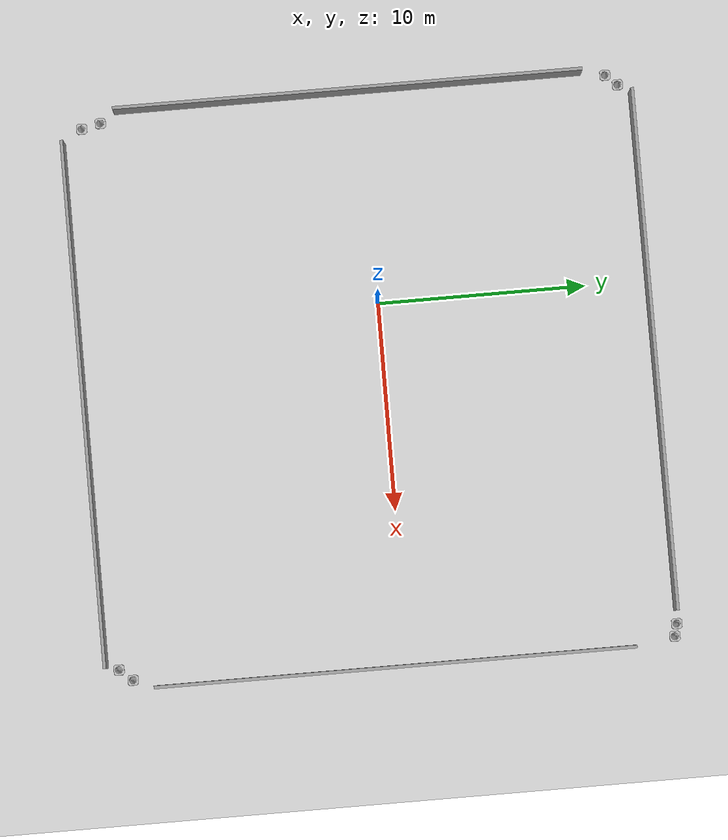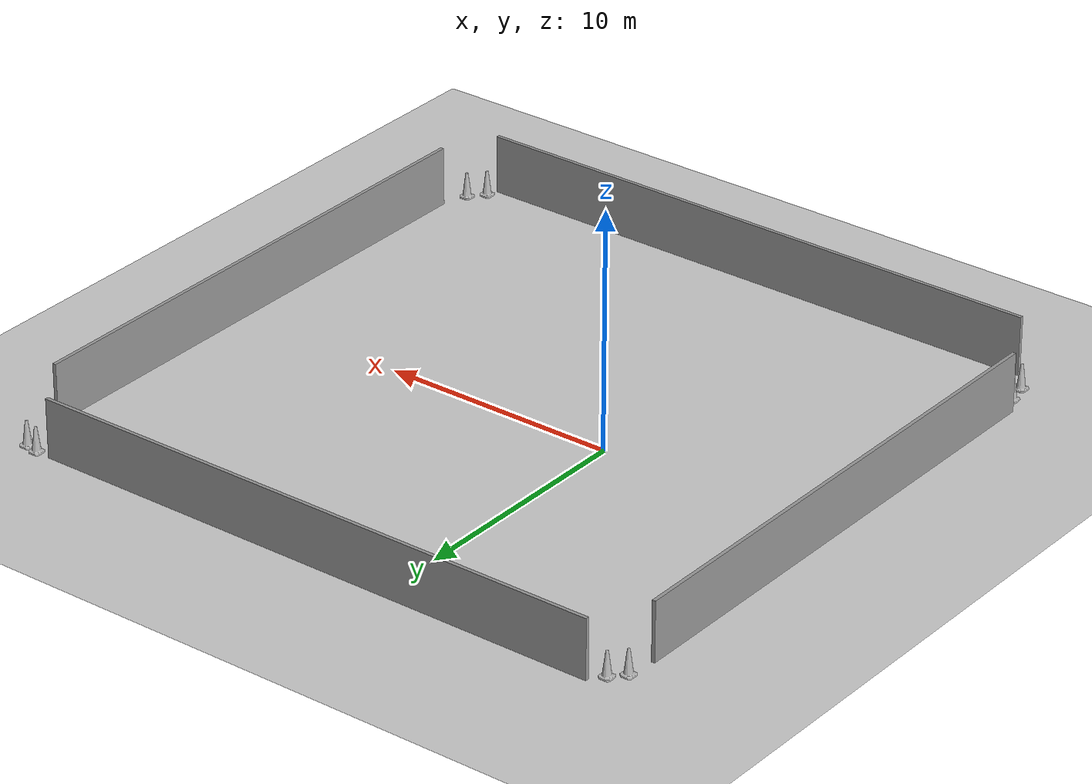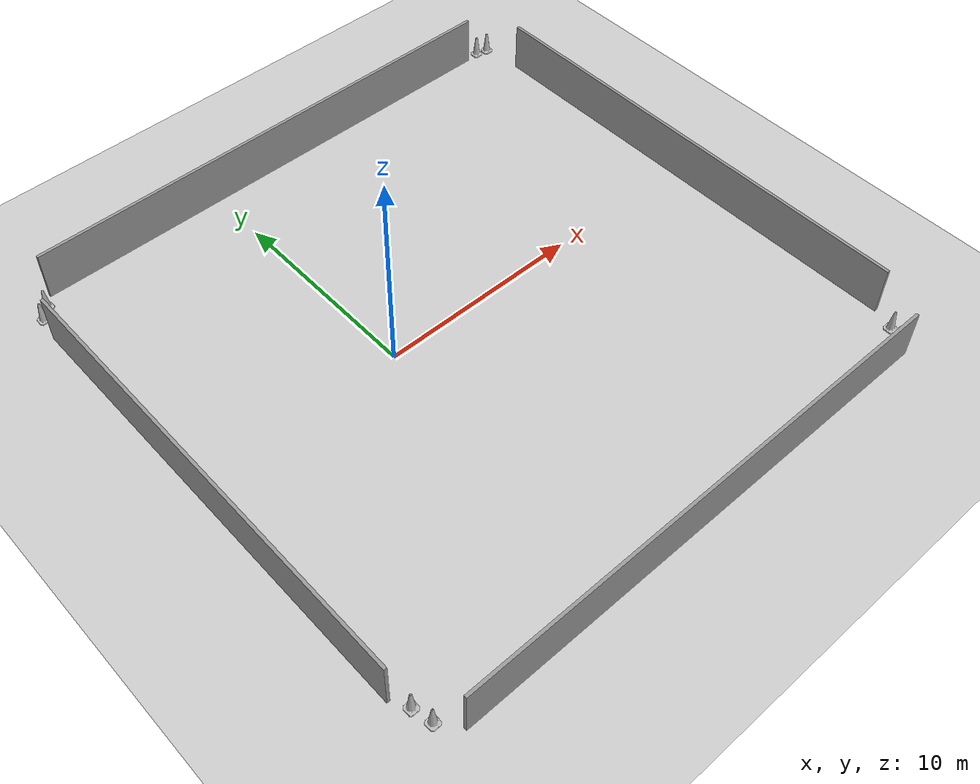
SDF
<sdf version="1.7">
 <world name="default">
  <light name="sun" type="directional">
   <pose>0 0 10 0 -0 0</pose>
   <diffuse>0.8 0.8 0.8 1</diffuse>
   <specular>0.2 0.2 0.2 1</specular>
   <attenuation>
    <range>1000</range>
    <constant>0.9</constant>
    <linear>0.01</linear>
    <quadratic>0.001</quadratic>
   </attenuation>
   <direction>-0.5 0.1 -0.9</direction>
   <spot><inner_angle>0</inner_angle><outer_angle>0</outer_angle><falloff>0</falloff></spot>
  </light>
  <model name="ground_plane">
   <static>1</static>
   <link name="link">
    <collision name="collision">
     <geometry><plane><normal>0 0 1</normal><size>100 100</size></plane></geometry>
     <surface><friction><ode><mu>100</mu><mu2>50</mu2></ode></friction></surface>
    </collision>
    <visual name="visual">
     <cast_shadows>0</cast_shadows>
     <geometry><plane><normal>0 0 1</normal><size>100 100</size></plane></geometry>
     <material>
      <script><uri>file://media/materials/scripts/gazebo.material</uri><name>Gazebo/Grey</name></script>
     </material>
    </visual>
   </link>
  </model>
  <gravity>0 0 -9.8</gravity>
  <magnetic_field>6e-06 2.3e-05 -4.2e-05</magnetic_field>
  <atmosphere type="adiabatic"/>
  <physics type="ode">
   <max_step_size>0.001</max_step_size>
   <real_time_factor>1</real_time_factor>
   <real_time_update_rate>1000</real_time_update_rate>
  </physics>
  <scene><ambient>0.4 0.4 0.4 1</ambient><background>0.7 0.7 0.7 1</background><shadows>1</shadows></scene>
  <audio><device>default</device></audio>
  <spherical_coordinates>
   <surface_model>EARTH_WGS84</surface_model>
   <latitude_deg>0</latitude_deg>
   <longitude_deg>0</longitude_deg>
   <elevation>0</elevation>
   <heading_deg>0</heading_deg>
  </spherical_coordinates>
  <model name="world_0">
   <pose>3.60702 -0.720893 0 0 -0 0</pose>
   <link name="Wall_25">
    <collision name="Wall_25_Collision">
     <geometry><box><size>22.5 0.15 2.5</size></box></geometry>
     <pose>0 0 1.25 0 -0 0</pose>
    </collision>
    <visual name="Wall_25_Visual">
     <pose>0 0 1.25 0 -0 0</pose>
     <geometry><box><size>22.5 0.15 2.5</size></box></geometry>
     <material>
      <script><uri>file://media/materials/scripts/gazebo.material</uri><name>Gazebo/Grey</name></script>
      <ambient>1 1 1 1</ambient>
     </material>
     <meta><layer>0</layer></meta>
    </visual>
    <pose>-13.8282 0.124328 0 0 -0 -1.5708</pose>
   </link>
   <link name="Wall_28">
    <collision name="Wall_28_Collision">
     <geometry><box><size>25 0.15 2.5</size></box></geometry>
     <pose>0 0 1.25 0 -0 0</pose>
    </collision>
    <visual name="Wall_28_Visual">
     <pose>0 0 1.25 0 -0 0</pose>
     <geometry><box><size>25 0.15 2.5</size></box></geometry>
     <material>
      <script><uri>file://media/materials/scripts/gazebo.material</uri><name>Gazebo/Grey</name></script>
      <ambient>1 1 1 1</ambient>
     </material>
     <meta><layer>0</layer></meta>
    </visual>
    <pose>-0.219485 13.6668 0 0 -0 0</pose>
   </link>
   <link name="Wall_30">
    <collision name="Wall_30_Collision">
     <geometry><box><size>23 0.15 2.5</size></box></geometry>
     <pose>0 0 1.25 0 -0 0</pose>
    </collision>
    <visual name="Wall_30_Visual">
     <pose>0 0 1.25 0 -0 0</pose>
     <geometry><box><size>23 0.15 2.5</size></box></geometry>
     <material>
      <script><uri>file://media/materials/scripts/gazebo.material</uri><name>Gazebo/Grey</name></script>
      <ambient>1 1 1 1</ambient>
     </material>
     <meta><layer>0</layer></meta>
    </visual>
    <pose>13.8282 0.089553 0 0 -0 -1.5708</pose>
   </link>
   <link name="Wall_32">
    <collision name="Wall_32_Collision">
     <geometry><box><size>25.25 0.15 2.5</size></box></geometry>
     <pose>0 0 1.25 0 -0 0</pose>
    </collision>
    <visual name="Wall_32_Visual">
     <pose>0 0 1.25 0 -0 0</pose>
     <geometry><box><size>25.25 0.15 2.5</size></box></geometry>
     <material>
      <script><uri>file://media/materials/scripts/gazebo.material</uri><name>Gazebo/Grey</name></script>
      <ambient>1 1 1 1</ambient>
     </material>
     <meta><layer>0</layer></meta>
    </visual>
    <pose>0.12074 -13.6668 0 0 -0 0</pose>
   </link>
   <static>1</static>
  </model>
  <model name="Construction Cone">
   <link name="link">
    <collision name="collision">
     <geometry>
      <mesh><scale>10 10 10</scale><uri>model://construction_cone/meshes/construction_cone.dae</uri></mesh>
     </geometry>
    </collision>
    <visual name="visual">
     <geometry>
      <mesh><scale>10 10 10</scale><uri>model://construction_cone/meshes/construction_cone.dae</uri></mesh>
     </geometry>
    </visual>
    <inertial>
     <inertia><ixx>1</ixx><ixy>0</ixy><ixz>0</ixz><iyy>1</iyy><iyz>0</iyz><izz>1</izz></inertia>
     <mass>1</mass>
    </inertial>
   </link>
   <pose>-10.0555 11.8353 -0 0 -0 0</pose>
  </model>
  <model name="Construction Cone_0">
   <link name="link">
    <collision name="collision">
     <geometry>
      <mesh><scale>10 10 10</scale><uri>model://construction_cone/meshes/construction_cone.dae</uri></mesh>
     </geometry>
    </collision>
    <visual name="visual">
     <geometry>
      <mesh><scale>10 10 10</scale><uri>model://construction_cone/meshes/construction_cone.dae</uri></mesh>
     </geometry>
    </visual>
    <inertial>
     <inertia><ixx>1</ixx><ixy>0</ixy><ixz>0</ixz><iyy>1</iyy><iyz>0</iyz><izz>1</izz></inertia>
     <mass>1</mass>
    </inertial>
   </link>
   <pose>-9.54649 12.3904 -0 0 -1e-06 0</pose>
  </model>
  <model name="Construction Cone_1">
   <link name="link">
    <collision name="collision">
     <geometry>
      <mesh><scale>10 10 10</scale><uri>model://construction_cone/meshes/construction_cone.dae</uri></mesh>
     </geometry>
    </collision>
    <visual name="visual">
     <geometry>
      <mesh><scale>10 10 10</scale><uri>model://construction_cone/meshes/construction_cone.dae</uri></mesh>
     </geometry>
    </visual>
    <inertial>
     <inertia><ixx>1</ixx><ixy>0</ixy><ixz>0</ixz><iyy>1</iyy><iyz>0</iyz><izz>1</izz></inertia>
     <mass>1</mass>
    </inertial>
   </link>
   <pose>-9.58176 -13.4841 -3e-06 4e-06 1e-06 0</pose>
  </model>
  <model name="Construction Cone_2">
   <link name="link">
    <collision name="collision">
     <geometry>
      <mesh><scale>10 10 10</scale><uri>model://construction_cone/meshes/construction_cone.dae</uri></mesh>
     </geometry>
    </collision>
    <visual name="visual">
     <geometry>
      <mesh><scale>10 10 10</scale><uri>model://construction_cone/meshes/construction_cone.dae</uri></mesh>
     </geometry>
    </visual>
    <inertial>
     <inertia><ixx>1</ixx><ixy>0</ixy><ixz>0</ixz><iyy>1</iyy><iyz>0</iyz><izz>1</izz></inertia>
     <mass>1</mass>
    </inertial>
   </link>
   <pose>-9.78338 -12.5672 -0 0 -0 0</pose>
  </model>
  <model name="Construction Cone_3">
   <link name="link">
    <collision name="collision">
     <geometry>
      <mesh><scale>10 10 10</scale><uri>model://construction_cone/meshes/construction_cone.dae</uri></mesh>
     </geometry>
    </collision>
    <visual name="visual">
     <geometry>
      <mesh><scale>10 10 10</scale><uri>model://construction_cone/meshes/construction_cone.dae</uri></mesh>
     </geometry>
    </visual>
    <inertial>
     <inertia><ixx>1</ixx><ixy>0</ixy><ixz>0</ixz><iyy>1</iyy><iyz>0</iyz><izz>1</izz></inertia>
     <mass>1</mass>
    </inertial>
   </link>
   <pose>17.0161 -13.1919 -0 0 -0 0</pose>
  </model>
  <model name="Construction Cone_4">
   <link name="link">
    <collision name="collision">
     <geometry>
      <mesh><scale>10 10 10</scale><uri>model://construction_cone/meshes/construction_cone.dae</uri></mesh>
     </geometry>
    </collision>
    <visual name="visual">
     <geometry>
      <mesh><scale>10 10 10</scale><uri>model://construction_cone/meshes/construction_cone.dae</uri></mesh>
     </geometry>
    </visual>
    <inertial>
     <inertia><ixx>1</ixx><ixy>0</ixy><ixz>0</ixz><iyy>1</iyy><iyz>0</iyz><izz>1</izz></inertia>
     <mass>1</mass>
    </inertial>
   </link>
   <pose>16.4731 -13.8234 -0 -0 -0 -0</pose>
  </model>
  <model name="Construction Cone_5">
   <link name="link">
    <collision name="collision">
     <geometry>
      <mesh><scale>10 10 10</scale><uri>model://construction_cone/meshes/construction_cone.dae</uri></mesh>
     </geometry>
    </collision>
    <visual name="visual">
     <geometry>
      <mesh><scale>10 10 10</scale><uri>model://construction_cone/meshes/construction_cone.dae</uri></mesh>
     </geometry>
    </visual>
    <inertial>
     <inertia><ixx>1</ixx><ixy>0</ixy><ixz>0</ixz><iyy>1</iyy><iyz>0</iyz><izz>1</izz></inertia>
     <mass>1</mass>
    </inertial>
   </link>
   <pose>16.5189 12.9717 -0 0 -0 0</pose>
  </model>
  <model name="Construction Cone_6">
   <link name="link">
    <collision name="collision">
     <geometry>
      <mesh><scale>10 10 10</scale><uri>model://construction_cone/meshes/construction_cone.dae</uri></mesh>
     </geometry>
    </collision>
    <visual name="visual">
     <geometry>
      <mesh><scale>10 10 10</scale><uri>model://construction_cone/meshes/construction_cone.dae</uri></mesh>
     </geometry>
    </visual>
    <inertial>
     <inertia><ixx>1</ixx><ixy>0</ixy><ixz>0</ixz><iyy>1</iyy><iyz>0</iyz><izz>1</izz></inertia>
     <mass>1</mass>
    </inertial>
   </link>
   <pose>17.1061 12.832 -0 0 -1e-06 0</pose>
  </model>
 </world>
</sdf>
